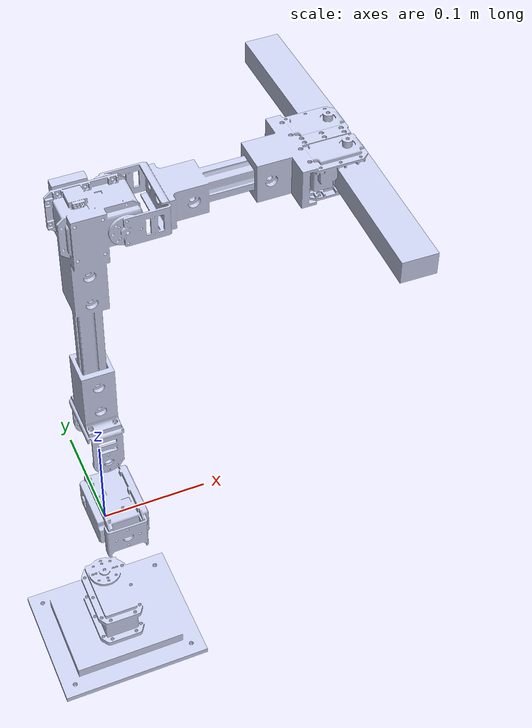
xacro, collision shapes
<?xml version="1.0"?>
<robot xmlns:xacro="http://www.ros.org/wiki/xacro" name="arm">
    <xacro:arg name="initial_positions_file" default="initial_positions.yaml" />

    <!-- Import arm urdf file -->
    <xacro:include filename="$(find skuba_edu_description)/urdf/arm/arm_moveit.urdf.xacro" />

    <!-- Import control_xacro -->
    <xacro:include filename="arm.ros2_control.xacro" />

    <xacro:arm_ros2_control name="FakeSystem" initial_positions_file="$(arg initial_positions_file)"/>

</robot>

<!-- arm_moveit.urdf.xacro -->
<robot name="arm" xmlns:xacro="http://ros.org/wiki/xacro">

  <joint
    name="arm_link_3_arm_link_4"
    type="fixed">
    <origin
      xyz="0 -0.19852 0"
      rpy="3.1416 0 -1.5708" />
    <parent
      link="arm_link_3" />
    <child
      link="arm_link_4" />
    <axis
      xyz="0 0 0" />
    <limit
      lower="-3.14"
      upper="3.14"
      effort="0"
      velocity="0" />
  </joint>
  <link name="arm_link_4"></link>

  <link
    name="arm_base_link">
    <inertial>
      <origin
        xyz="-0.03212282198 -0.42012512735 0.42806654755"
        rpy="0 0 0" />
      <mass
        value="0.186163368805018" />
      <inertia
        ixx="0.00012911430163569"
        ixy="6.51866525966857E-10"
        ixz="4.04912675311546E-10"
        iyy="0.000270182092432814"
        iyz="3.35442702197418E-07"
        izz="0.000167882757488322" />
    </inertial>
    <visual>
      <origin
        xyz="0.03237 -0.0645 0.375"
        rpy="0 0 -1.5708" />
      <geometry>
        <mesh
          filename="package://skuba_edu_description/meshes/arm/arm_base_link.STL" />
      </geometry>
      <material
        name="">
        <color
          rgba="0.792156862745098 0.819607843137255 0.933333333333333 1" />
      </material>
    </visual>
    <collision>
      <origin
        xyz="0.03237 -0.0645 0.375"
        rpy="0 0 0" />
      <geometry>
        <mesh
          filename="package://skuba_edu_description/meshes/arm/arm_base_link.STL" />
      </geometry>
    </collision>
  </link>
  <link
    name="arm_link_1">
    <inertial>
      <origin
        xyz="6.15184211939929E-05 -0.0325958294491363 -0.000169492133248482"
        rpy="0 0 0" />
      <mass
        value="0.0863559618404855" />
      <inertia
        ixx="3.18738615082819E-05"
        ixy="-1.73028253968493E-07"
        ixz="-2.12738742921425E-09"
        iyy="2.21589667428724E-05"
        iyz="9.73665351283212E-09"
        izz="3.96350749701624E-05" />
    </inertial>
    <visual>
      <origin
        xyz="0 0 0.073"
        rpy="1.5708 0 1.5708" />
      <geometry>
        <mesh
          filename="package://skuba_edu_description/meshes/arm/arm_link_1.STL" />
      </geometry>
      <material
        name="">
        <color
          rgba="0.792156862745098 0.819607843137255 0.933333333333333 1" />
      </material>
    </visual>
    <collision>
      <origin
        xyz="0 0 0"
        rpy="0 0 0" />
      <geometry>
        <mesh
          filename="package://skuba_edu_description/meshes/arm/arm_link_1.STL" />
      </geometry>
    </collision>
  </link>
  <joint
    name="arm_base_link_link_1"
    type="revolute">
    <origin
      xyz="0 0 0.055"
      rpy="0 0 0" />
    <parent
      link="arm_base_link" />
    <child
      link="arm_link_1" />
    <axis
      xyz="0 0 1" />
    <limit
      lower="-3.14"
      upper="3.14"
      effort="0"
      velocity="0" />
  </joint>
  <link
    name="arm_link_2">
    <inertial>
      <origin
        xyz="0.000203280213561932 -0.193086411594665 0.00531640363050518"
        rpy="0 0 0" />
      <mass
        value="0.203789418700687" />
      <inertia
        ixx="0.000190742524201691"
        ixy="3.60636681187183E-09"
        ixz="-1.81324565296997E-07"
        iyy="6.95147446909765E-05"
        iyz="-2.5389805639446E-09"
        izz="0.000191867605418963" />
    </inertial>
    <visual>
      <origin
        xyz="0 0 0"
        rpy="0 0 0" />
      <geometry>
        <mesh
          filename="package://skuba_edu_description/meshes/arm/arm_link_2.STL" />
      </geometry>
      <material
        name="">
        <color
          rgba="0.792156862745098 0.819607843137255 0.933333333333333 1" />
      </material>
    </visual>
    <collision>
      <origin
        xyz="0 0 0"
        rpy="0 0 0" />
      <geometry>
        <mesh
          filename="package://skuba_edu_description/meshes/arm/arm_link_2.STL" />
      </geometry>
    </collision>
  </link>
  <joint
    name="arm_link_1_arm_link_2"
    type="revolute">
    <origin
      xyz="0 0 0.058"
      rpy="-1.5708 0 -1.5708" />
    <parent
      link="arm_link_1" />
    <child
      link="arm_link_2" />
    <axis
      xyz="-1 0 0" />
    <limit
      lower="-1.97728351"
      upper="1.96"
      effort="0"
      velocity="0" />
  </joint>
  <link
    name="arm_link_3">
    <inertial>
      <origin
        xyz="0.000251076986040322 -0.134949597462582 7.19713697072465E-05"
        rpy="0 0 0" />
      <mass
        value="0.172390710019942" />
      <inertia
        ixx="5.70915688480554E-05"
        ixy="8.63831723211208E-09"
        ixz="2.70858587460573E-08"
        iyy="4.10041759288329E-05"
        iyz="3.6456768903629E-07"
        izz="6.06950558357656E-05" />
    </inertial>
    <visual>
      <origin
        xyz="0 0 0"
        rpy="0 0 0" />
      <geometry>
        <mesh
          filename="package://skuba_edu_description/meshes/arm/arm_link_3.STL" />
      </geometry>
      <material
        name="">
        <color
          rgba="0.792156862745098 0.819607843137255 0.933333333333333 1" />
      </material>
    </visual>
    <collision>
      <origin
        xyz="0 0 0"
        rpy="0 0 0" />
      <geometry>
        <mesh
          filename="package://skuba_edu_description/meshes/arm/arm_link_3.STL" />
      </geometry>
    </collision>
  </link>
  <joint
    name="arm_link_2_arm_link_3"
    type="revolute">
    <origin
      xyz="0.0001861 -0.26323 0.029054"
      rpy="-1.5637 0.006405 0" />
    <parent
      link="arm_link_2" />
    <child
      link="arm_link_3" />
    <axis
      xyz="1 0 0" />
    <limit
      lower="-1.495"
      upper="1.7150"
      effort="0"
      velocity="0" />
  </joint>

  <link
    name="gripper_left">
    <inertial>
      <origin
        xyz="-1.36557432028894E-14 0.00371354964107491 -0.0658562479654084"
        rpy="0 0 0" />
      <mass
        value="0.0399134428025758" />
      <inertia
        ixx="8.89145445270827E-05"
        ixy="8.00975530747348E-20"
        ixz="9.1972557948546E-20"
        iyy="7.9519655277471E-05"
        iyz="-3.2685247036163E-20"
        izz="1.23849345958696E-05" />
    </inertial>
    <visual>
      <origin
        xyz="0 0 0"
        rpy="0 0 0" />
      <geometry>
        <mesh
          filename="package://skuba_edu_description/meshes/arm/gripper_left.STL" />
      </geometry>
      <material
        name="">
        <color
          rgba="0.792156862745098 0.819607843137255 0.933333333333333 1" />
      </material>
    </visual>
    <collision>
      <origin
        xyz="0 0 -0.065856"
        rpy="0 0 0" />
      <geometry>
        <box size="0.03 0.02 0.13" />
      </geometry>
    </collision>
  </link>
  <joint
    name="arm_link_3_gripper_left"
    type="revolute">
    <origin
      xyz="-0.017564 -0.18602 0.00033973"
      rpy="1.5901 0.00014201 1.5635" />
    <parent
      link="arm_link_3" />
    <child
      link="gripper_left" />
    <axis
      xyz="0 -1 0" />
    <limit
      lower="-3.14"
      upper="0"
      effort="0"
      velocity="0" />
  </joint>
  <link
    name="gripper_right">
    <inertial>
      <origin
        xyz="-1.72917236085368E-14 -0.00371362963156591 -0.0658562479655016"
        rpy="0 0 0" />
      <mass
        value="0.0399134428025757" />
      <inertia
        ixx="8.89145445270828E-05"
        ixy="-4.2881042954749E-21"
        ixz="2.17052192733914E-19"
        iyy="7.95196552774711E-05"
        iyz="5.80409888361614E-20"
        izz="1.23849345958696E-05" />
    </inertial>
    <visual>
      <origin
        xyz="0 0 0"
        rpy="0 0 0" />
      <geometry>
        <mesh
          filename="package://skuba_edu_description/meshes/arm/gripper_right.STL" />
      </geometry>
      <material
        name="">
        <color
          rgba="0.792156862745098 0.819607843137255 0.933333333333333 1" />
      </material>
    </visual>
    <collision>
      <origin
        xyz="0 0 -0.065856"
        rpy="0 0 0" />
      <geometry>
        <box size="0.03 0.02 0.13" />
      </geometry>
    </collision>
  </link>
  <joint
    name="arm_link_3_gripper_right"
    type="revolute">
    <origin
      xyz="0.01803 -0.18602 -0.00034876"
      rpy="-1.5515 -0.00046036 1.5946" />
    <parent
      link="arm_link_3" />
    <child
      link="gripper_right" />
    <axis
      xyz="0 1 0" />
    <limit
      lower="0"
      upper="3.14"
      effort="0"
      velocity="0" />
  </joint>
</robot>
